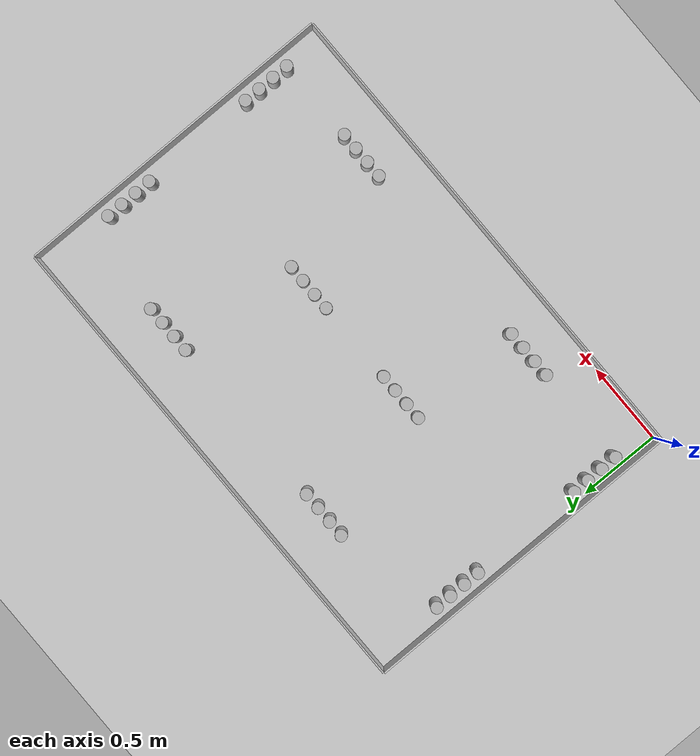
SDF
<sdf version="1.6">
  <world name="empty">
    <physics name="1ms" type="ignored">
      <max_step_size>0.001</max_step_size>
      <real_time_factor>1.0</real_time_factor>
    </physics>
    <plugin
      filename="gz-sim-physics-system"
      name="gz::sim::systems::Physics">
    </plugin>
    <plugin
      filename="gz-sim-user-commands-system"
      name="gz::sim::systems::UserCommands">
    </plugin>
    <plugin
      filename="gz-sim-scene-broadcaster-system"
      name="gz::sim::systems::SceneBroadcaster">
    </plugin>
    <plugin
      filename="gz-sim-sensors-system"
      name="gz::sim::systems::Sensors">
      <render_engine>ogre2</render_engine>
    </plugin>
    <plugin
      filename="gz-sim-contact-system"
      name="gz::sim::systems::Contact">
    </plugin>

    <light type="directional" name="sun">
      <cast_shadows>true</cast_shadows>
      <pose>0 0 10 0 0 0</pose>
      <diffuse>0.8 0.8 0.8 1</diffuse>
      <specular>0.2 0.2 0.2 1</specular>
      <attenuation>
        <range>1000</range>
        <constant>0.9</constant>
        <linear>0.01</linear>
        <quadratic>0.001</quadratic>
      </attenuation>
      <direction>-0.5 0.1 -0.9</direction>
    </light>

    <model name="ground_plane">
        <pose>1.5 1 0 0 0 0</pose>
        <static>true</static>
        <link name="link">
        <collision name="collision">
          <geometry>
            <plane>
              <normal>0 0 1</normal>
              <size>3 2</size>
            </plane>
          </geometry>
        </collision>
        <visual name="visual">
          <geometry>
            <plane>
              <normal>0 0 1</normal>
              <size>3 2</size>
            </plane>
          </geometry>
          <material>
            <ambient>0.8 0.8 0.8 1</ambient>
            <diffuse>0.8 0.8 0.8 1</diffuse>
            <specular>0.8 0.8 0.8 1</specular>
          </material>
        </visual>
      </link>
    </model>

    <model name="gradinBR">
      <static>true</static>
      <pose>0 0 0.0545 0 0 0</pose>
      <link name="bean_can1">
        <pose relative_to='__model__'>0.075 0.25 0 1.5708 0 0</pose>
        <collision name="collision">
          <geometry>
            <cylinder>
                <radius>0.0365</radius>
                <length>0.109</length>
            </cylinder>
          </geometry>
        </collision>
        <visual name="visual">
          <geometry>
            <mesh>
              <uri>file:///home/josch/ROS2/src/robot_creation/src/gazebo/Bean_Can_Aruco/Joshka_cannette1.obj</uri>
              <scale>0.001 0.001 0.001</scale>
            </mesh>
          </geometry>
        </visual>
      </link>
      <link name="bean_can2">
        <pose relative_to='__model__'>0.075 0.35 0 1.5708 0 0</pose>
        <collision name="collision">
          <geometry>
            <cylinder>
                <radius>0.0365</radius>
                <length>0.109</length>
            </cylinder>
          </geometry>
        </collision>
        <visual name="visual">
          <geometry>
            <mesh>
              <uri>file:///home/josch/ROS2/src/robot_creation/src/gazebo/Bean_Can_Aruco/Joshka_cannette1.obj</uri>
              <scale>0.001 0.001 0.001</scale>
            </mesh>
          </geometry>
        </visual>
      </link>
      <link name="bean_can3">
        <pose relative_to='__model__'>0.075 0.45 0 1.5708 0 0</pose>
        <collision name="collision">
          <geometry>
            <cylinder>
                <radius>0.0365</radius>
                <length>0.109</length>
            </cylinder>
          </geometry>
        </collision>
        <visual name="visual">
          <geometry>
            <mesh>
              <uri>file:///home/josch/ROS2/src/robot_creation/src/gazebo/Bean_Can_Aruco/Joshka_cannette1.obj</uri>
              <scale>0.001 0.001 0.001</scale>
            </mesh>
          </geometry>
        </visual>
      </link>
      <link name="bean_can4">
        <pose relative_to='__model__'>0.075 0.55 0 1.5708 0 0</pose>
        <collision name="collision">
          <geometry>
            <cylinder>
                <radius>0.0365</radius>
                <length>0.109</length>
            </cylinder>
          </geometry>
        </collision>
        <visual name="visual">
          <geometry>
            <mesh>
              <uri>file:///home/josch/ROS2/src/robot_creation/src/gazebo/Bean_Can_Aruco/Joshka_cannette1.obj</uri>
              <scale>0.001 0.001 0.001</scale>
            </mesh>
          </geometry>
        </visual>
      </link>
    </model>
    <model name="gradinBL">
      <static>true</static>
      <pose>0 1 0.0545 0 0 0</pose>
      <link name="bean_can1">
        <pose relative_to='__model__'>0.075 0.25 0 1.5708 0 0</pose>
        <collision name="collision">
          <geometry>
            <cylinder>
                <radius>0.0365</radius>
                <length>0.109</length>
            </cylinder>
          </geometry>
        </collision>
        <visual name="visual">
          <geometry>
            <mesh>
              <uri>file:///home/josch/ROS2/src/robot_creation/src/gazebo/Bean_Can_Aruco/Joshka_cannette1.obj</uri>
              <scale>0.001 0.001 0.001</scale>
            </mesh>
          </geometry>
        </visual>
      </link>
      <link name="bean_can2">
        <pose relative_to='__model__'>0.075 0.35 0 1.5708 0 0</pose>
        <collision name="collision">
          <geometry>
            <cylinder>
                <radius>0.0365</radius>
                <length>0.109</length>
            </cylinder>
          </geometry>
        </collision>
        <visual name="visual">
          <geometry>
            <mesh>
              <uri>file:///home/josch/ROS2/src/robot_creation/src/gazebo/Bean_Can_Aruco/Joshka_cannette1.obj</uri>
              <scale>0.001 0.001 0.001</scale>
            </mesh>
          </geometry>
        </visual>
      </link>
      <link name="bean_can3">
        <pose relative_to='__model__'>0.075 0.45 0 1.5708 0 0</pose>
        <collision name="collision">
          <geometry>
            <cylinder>
                <radius>0.0365</radius>
                <length>0.109</length>
            </cylinder>
          </geometry>
        </collision>
        <visual name="visual">
          <geometry>
            <mesh>
              <uri>file:///home/josch/ROS2/src/robot_creation/src/gazebo/Bean_Can_Aruco/Joshka_cannette1.obj</uri>
              <scale>0.001 0.001 0.001</scale>
            </mesh>
          </geometry>
        </visual>
      </link>
      <link name="bean_can4">
        <pose relative_to='__model__'>0.075 0.55 0 1.5708 0 0</pose>
        <collision name="collision">
          <geometry>
            <cylinder>
                <radius>0.0365</radius>
                <length>0.109</length>
            </cylinder>
          </geometry>
        </collision>
        <visual name="visual">
          <geometry>
            <mesh>
              <uri>file:///home/josch/ROS2/src/robot_creation/src/gazebo/Bean_Can_Aruco/Joshka_cannette1.obj</uri>
              <scale>0.001 0.001 0.001</scale>
            </mesh>
          </geometry>
        </visual>
      </link>
    </model>
    <model name="gradinTR">
      <static>true</static>
      <pose>2.85 0 0.0545 0 0 0</pose>
      <link name="bean_can1">
        <pose relative_to='__model__'>0.075 0.25 0 1.5708 0 0</pose>
        <collision name="collision">
          <geometry>
            <cylinder>
                <radius>0.0365</radius>
                <length>0.109</length>
            </cylinder>
          </geometry>
        </collision>
        <visual name="visual">
          <geometry>
            <mesh>
              <uri>file:///home/josch/ROS2/src/robot_creation/src/gazebo/Bean_Can_Aruco/Joshka_cannette1.obj</uri>
              <scale>0.001 0.001 0.001</scale>
            </mesh>
          </geometry>
        </visual>
      </link>
      <link name="bean_can2">
        <pose relative_to='__model__'>0.075 0.35 0 1.5708 0 0</pose>
        <collision name="collision">
          <geometry>
            <cylinder>
                <radius>0.0365</radius>
                <length>0.109</length>
            </cylinder>
          </geometry>
        </collision>
        <visual name="visual">
          <geometry>
            <mesh>
              <uri>file:///home/josch/ROS2/src/robot_creation/src/gazebo/Bean_Can_Aruco/Joshka_cannette1.obj</uri>
              <scale>0.001 0.001 0.001</scale>
            </mesh>
          </geometry>
        </visual>
      </link>
      <link name="bean_can3">
        <pose relative_to='__model__'>0.075 0.45 0 1.5708 0 0</pose>
        <collision name="collision">
          <geometry>
            <cylinder>
                <radius>0.0365</radius>
                <length>0.109</length>
            </cylinder>
          </geometry>
        </collision>
        <visual name="visual">
          <geometry>
            <mesh>
              <uri>file:///home/josch/ROS2/src/robot_creation/src/gazebo/Bean_Can_Aruco/Joshka_cannette1.obj</uri>
              <scale>0.001 0.001 0.001</scale>
            </mesh>
          </geometry>
        </visual>
      </link>
      <link name="bean_can4">
        <pose relative_to='__model__'>0.075 0.55 0 1.5708 0 0</pose>
        <collision name="collision">
          <geometry>
            <cylinder>
                <radius>0.0365</radius>
                <length>0.109</length>
            </cylinder>
          </geometry>
        </collision>
        <visual name="visual">
          <geometry>
            <mesh>
              <uri>file:///home/josch/ROS2/src/robot_creation/src/gazebo/Bean_Can_Aruco/Joshka_cannette1.obj</uri>
              <scale>0.001 0.001 0.001</scale>
            </mesh>
          </geometry>
        </visual>
      </link>
    </model>
    <model name="gradinTL">
      <static>true</static>
      <pose>2.85 1 0.0545 0 0 0</pose>
      <link name="bean_can1">
        <pose relative_to='__model__'>0.075 0.25 0 1.5708 0 0</pose>
        <collision name="collision">
          <geometry>
            <cylinder>
                <radius>0.0365</radius>
                <length>0.109</length>
            </cylinder>
          </geometry>
        </collision>
        <visual name="visual">
          <geometry>
            <mesh>
              <uri>file:///home/josch/ROS2/src/robot_creation/src/gazebo/Bean_Can_Aruco/Joshka_cannette1.obj</uri>
              <scale>0.001 0.001 0.001</scale>
            </mesh>
          </geometry>
        </visual>
      </link>
      <link name="bean_can2">
        <pose relative_to='__model__'>0.075 0.35 0 1.5708 0 0</pose>
        <collision name="collision">
          <geometry>
            <cylinder>
                <radius>0.0365</radius>
                <length>0.109</length>
            </cylinder>
          </geometry>
        </collision>
        <visual name="visual">
          <geometry>
            <mesh>
              <uri>file:///home/josch/ROS2/src/robot_creation/src/gazebo/Bean_Can_Aruco/Joshka_cannette1.obj</uri>
              <scale>0.001 0.001 0.001</scale>
            </mesh>
          </geometry>
        </visual>
      </link>
      <link name="bean_can3">
        <pose relative_to='__model__'>0.075 0.45 0 1.5708 0 0</pose>
        <collision name="collision">
          <geometry>
            <cylinder>
                <radius>0.0365</radius>
                <length>0.109</length>
            </cylinder>
          </geometry>
        </collision>
        <visual name="visual">
          <geometry>
            <mesh>
              <uri>file:///home/josch/ROS2/src/robot_creation/src/gazebo/Bean_Can_Aruco/Joshka_cannette1.obj</uri>
              <scale>0.001 0.001 0.001</scale>
            </mesh>
          </geometry>
        </visual>
      </link>
      <link name="bean_can4">
        <pose relative_to='__model__'>0.075 0.55 0 1.5708 0 0</pose>
        <collision name="collision">
          <geometry>
            <cylinder>
                <radius>0.0365</radius>
                <length>0.109</length>
            </cylinder>
          </geometry>
        </collision>
        <visual name="visual">
          <geometry>
            <mesh>
              <uri>file:///home/josch/ROS2/src/robot_creation/src/gazebo/Bean_Can_Aruco/Joshka_cannette1.obj</uri>
              <scale>0.001 0.001 0.001</scale>
            </mesh>
          </geometry>
        </visual>
      </link>
    </model>
    <model name="gradinBCL">
      <static>true</static>
      <pose>0.475 1.7755 0.0545 0 0 -1.5708</pose>
      <link name="bean_can1">
        <pose relative_to='__model__'>0.075 0.25 0 1.5708 0 0</pose>
        <collision name="collision">
          <geometry>
            <cylinder>
                <radius>0.0365</radius>
                <length>0.109</length>
            </cylinder>
          </geometry>
        </collision>
        <visual name="visual">
          <geometry>
            <mesh>
              <uri>file:///home/josch/ROS2/src/robot_creation/src/gazebo/Bean_Can_Aruco/Joshka_cannette1.obj</uri>
              <scale>0.001 0.001 0.001</scale>
            </mesh>
          </geometry>
        </visual>
      </link>
      <link name="bean_can2">
        <pose relative_to='__model__'>0.075 0.35 0 1.5708 0 0</pose>
        <collision name="collision">
          <geometry>
            <cylinder>
                <radius>0.0365</radius>
                <length>0.109</length>
            </cylinder>
          </geometry>
        </collision>
        <visual name="visual">
          <geometry>
            <mesh>
              <uri>file:///home/josch/ROS2/src/robot_creation/src/gazebo/Bean_Can_Aruco/Joshka_cannette1.obj</uri>
              <scale>0.001 0.001 0.001</scale>
            </mesh>
          </geometry>
        </visual>
      </link>
      <link name="bean_can3">
        <pose relative_to='__model__'>0.075 0.45 0 1.5708 0 0</pose>
        <collision name="collision">
          <geometry>
            <cylinder>
                <radius>0.0365</radius>
                <length>0.109</length>
            </cylinder>
          </geometry>
        </collision>
        <visual name="visual">
          <geometry>
            <mesh>
              <uri>file:///home/josch/ROS2/src/robot_creation/src/gazebo/Bean_Can_Aruco/Joshka_cannette1.obj</uri>
              <scale>0.001 0.001 0.001</scale>
            </mesh>
          </geometry>
        </visual>
      </link>
      <link name="bean_can4">
        <pose relative_to='__model__'>0.075 0.55 0 1.5708 0 0</pose>
        <collision name="collision">
          <geometry>
            <cylinder>
                <radius>0.0365</radius>
                <length>0.109</length>
            </cylinder>
          </geometry>
        </collision>
        <visual name="visual">
          <geometry>
            <mesh>
              <uri>file:///home/josch/ROS2/src/robot_creation/src/gazebo/Bean_Can_Aruco/Joshka_cannette1.obj</uri>
              <scale>0.001 0.001 0.001</scale>
            </mesh>
          </geometry>
        </visual>
      </link>
    </model>
    <model name="gradinBCR">
      <static>true</static>
      <pose>0.425 0.325 0.0545 0 0 -1.5708</pose>
      <link name="bean_can1">
        <pose relative_to='__model__'>0.075 0.25 0 1.5708 0 0</pose>
        <collision name="collision">
          <geometry>
            <cylinder>
                <radius>0.0365</radius>
                <length>0.109</length>
            </cylinder>
          </geometry>
        </collision>
        <visual name="visual">
          <geometry>
            <mesh>
              <uri>file:///home/josch/ROS2/src/robot_creation/src/gazebo/Bean_Can_Aruco/Joshka_cannette1.obj</uri>
              <scale>0.001 0.001 0.001</scale>
            </mesh>
          </geometry>
        </visual>
      </link>
      <link name="bean_can2">
        <pose relative_to='__model__'>0.075 0.35 0 1.5708 0 0</pose>
        <collision name="collision">
          <geometry>
            <cylinder>
                <radius>0.0365</radius>
                <length>0.109</length>
            </cylinder>
          </geometry>
        </collision>
        <visual name="visual">
          <geometry>
            <mesh>
              <uri>file:///home/josch/ROS2/src/robot_creation/src/gazebo/Bean_Can_Aruco/Joshka_cannette1.obj</uri>
              <scale>0.001 0.001 0.001</scale>
            </mesh>
          </geometry>
        </visual>
      </link>
      <link name="bean_can3">
        <pose relative_to='__model__'>0.075 0.45 0 1.5708 0 0</pose>
        <collision name="collision">
          <geometry>
            <cylinder>
                <radius>0.0365</radius>
                <length>0.109</length>
            </cylinder>
          </geometry>
        </collision>
        <visual name="visual">
          <geometry>
            <mesh>
              <uri>file:///home/josch/ROS2/src/robot_creation/src/gazebo/Bean_Can_Aruco/Joshka_cannette1.obj</uri>
              <scale>0.001 0.001 0.001</scale>
            </mesh>
          </geometry>
        </visual>
      </link>
      <link name="bean_can4">
        <pose relative_to='__model__'>0.075 0.55 0 1.5708 0 0</pose>
        <collision name="collision">
          <geometry>
            <cylinder>
                <radius>0.0365</radius>
                <length>0.109</length>
            </cylinder>
          </geometry>
        </collision>
        <visual name="visual">
          <geometry>
            <mesh>
              <uri>file:///home/josch/ROS2/src/robot_creation/src/gazebo/Bean_Can_Aruco/Joshka_cannette1.obj</uri>
              <scale>0.001 0.001 0.001</scale>
            </mesh>
          </geometry>
        </visual>
      </link>
    </model>
    <model name="gradinBCC">
      <static>true</static>
      <pose>0.700 1.025 0.0545 0 0 -1.5708</pose>
      <link name="bean_can1">
        <pose relative_to='__model__'>0.075 0.25 0 1.5708 0 0</pose>
        <collision name="collision">
          <geometry>
            <cylinder>
                <radius>0.0365</radius>
                <length>0.109</length>
            </cylinder>
          </geometry>
        </collision>
        <visual name="visual">
          <geometry>
            <mesh>
              <uri>file:///home/josch/ROS2/src/robot_creation/src/gazebo/Bean_Can_Aruco/Joshka_cannette1.obj</uri>
              <scale>0.001 0.001 0.001</scale>
            </mesh>
          </geometry>
        </visual>
      </link>
      <link name="bean_can2">
        <pose relative_to='__model__'>0.075 0.35 0 1.5708 0 0</pose>
        <collision name="collision">
          <geometry>
            <cylinder>
                <radius>0.0365</radius>
                <length>0.109</length>
            </cylinder>
          </geometry>
        </collision>
        <visual name="visual">
          <geometry>
            <mesh>
              <uri>file:///home/josch/ROS2/src/robot_creation/src/gazebo/Bean_Can_Aruco/Joshka_cannette1.obj</uri>
              <scale>0.001 0.001 0.001</scale>
            </mesh>
          </geometry>
        </visual>
      </link>
      <link name="bean_can3">
        <pose relative_to='__model__'>0.075 0.45 0 1.5708 0 0</pose>
        <collision name="collision">
          <geometry>
            <cylinder>
                <radius>0.0365</radius>
                <length>0.109</length>
            </cylinder>
          </geometry>
        </collision>
        <visual name="visual">
          <geometry>
            <mesh>
              <uri>file:///home/josch/ROS2/src/robot_creation/src/gazebo/Bean_Can_Aruco/Joshka_cannette1.obj</uri>
              <scale>0.001 0.001 0.001</scale>
            </mesh>
          </geometry>
        </visual>
      </link>
      <link name="bean_can4">
        <pose relative_to='__model__'>0.075 0.55 0 1.5708 0 0</pose>
        <collision name="collision">
          <geometry>
            <cylinder>
                <radius>0.0365</radius>
                <length>0.109</length>
            </cylinder>
          </geometry>
        </collision>
        <visual name="visual">
          <geometry>
            <mesh>
              <uri>file:///home/josch/ROS2/src/robot_creation/src/gazebo/Bean_Can_Aruco/Joshka_cannette1.obj</uri>
              <scale>0.001 0.001 0.001</scale>
            </mesh>
          </geometry>
        </visual>
      </link>
    </model>
      <model name="gradinTCL">
      <static>true</static>
      <pose>1.825 1.7755 0.0545 0 0 -1.5708</pose>
      <link name="bean_can1">
        <pose relative_to='__model__'>0.075 0.25 0 1.5708 0 0</pose>
        <collision name="collision">
          <geometry>
            <cylinder>
                <radius>0.0365</radius>
                <length>0.109</length>
            </cylinder>
          </geometry>
        </collision>
        <visual name="visual">
          <geometry>
            <mesh>
              <uri>file:///home/josch/ROS2/src/robot_creation/src/gazebo/Bean_Can_Aruco/Joshka_cannette1.obj</uri>
              <scale>0.001 0.001 0.001</scale>
            </mesh>
          </geometry>
        </visual>
      </link>
      <link name="bean_can2">
        <pose relative_to='__model__'>0.075 0.35 0 1.5708 0 0</pose>
        <collision name="collision">
          <geometry>
            <cylinder>
                <radius>0.0365</radius>
                <length>0.109</length>
            </cylinder>
          </geometry>
        </collision>
        <visual name="visual">
          <geometry>
            <mesh>
              <uri>file:///home/josch/ROS2/src/robot_creation/src/gazebo/Bean_Can_Aruco/Joshka_cannette1.obj</uri>
              <scale>0.001 0.001 0.001</scale>
            </mesh>
          </geometry>
        </visual>
      </link>
      <link name="bean_can3">
        <pose relative_to='__model__'>0.075 0.45 0 1.5708 0 0</pose>
        <collision name="collision">
          <geometry>
            <cylinder>
                <radius>0.0365</radius>
                <length>0.109</length>
            </cylinder>
          </geometry>
        </collision>
        <visual name="visual">
          <geometry>
            <mesh>
              <uri>file:///home/josch/ROS2/src/robot_creation/src/gazebo/Bean_Can_Aruco/Joshka_cannette1.obj</uri>
              <scale>0.001 0.001 0.001</scale>
            </mesh>
          </geometry>
        </visual>
      </link>
      <link name="bean_can4">
        <pose relative_to='__model__'>0.075 0.55 0 1.5708 0 0</pose>
        <collision name="collision">
          <geometry>
            <cylinder>
                <radius>0.0365</radius>
                <length>0.109</length>
            </cylinder>
          </geometry>
        </collision>
        <visual name="visual">
          <geometry>
            <mesh>
              <uri>file:///home/josch/ROS2/src/robot_creation/src/gazebo/Bean_Can_Aruco/Joshka_cannette1.obj</uri>
              <scale>0.001 0.001 0.001</scale>
            </mesh>
          </geometry>
        </visual>
      </link>
    </model>
    <model name="gradinTCR">
      <static>true</static>
      <pose>1.875 0.325 0.0545 0 0 -1.5708</pose>
      <link name="bean_can1">
        <pose relative_to='__model__'>0.075 0.25 0 1.5708 0 0</pose>
        <collision name="collision">
          <geometry>
            <cylinder>
                <radius>0.0365</radius>
                <length>0.109</length>
            </cylinder>
          </geometry>
        </collision>
        <visual name="visual">
          <geometry>
            <mesh>
              <uri>file:///home/josch/ROS2/src/robot_creation/src/gazebo/Bean_Can_Aruco/Joshka_cannette1.obj</uri>
              <scale>0.001 0.001 0.001</scale>
            </mesh>
          </geometry>
        </visual>
      </link>
      <link name="bean_can2">
        <pose relative_to='__model__'>0.075 0.35 0 1.5708 0 0</pose>
        <collision name="collision">
          <geometry>
            <cylinder>
                <radius>0.0365</radius>
                <length>0.109</length>
            </cylinder>
          </geometry>
        </collision>
        <visual name="visual">
          <geometry>
            <mesh>
              <uri>file:///home/josch/ROS2/src/robot_creation/src/gazebo/Bean_Can_Aruco/Joshka_cannette1.obj</uri>
              <scale>0.001 0.001 0.001</scale>
            </mesh>
          </geometry>
        </visual>
      </link>
      <link name="bean_can3">
        <pose relative_to='__model__'>0.075 0.45 0 1.5708 0 0</pose>
        <collision name="collision">
          <geometry>
            <cylinder>
                <radius>0.0365</radius>
                <length>0.109</length>
            </cylinder>
          </geometry>
        </collision>
        <visual name="visual">
          <geometry>
            <mesh>
              <uri>file:///home/josch/ROS2/src/robot_creation/src/gazebo/Bean_Can_Aruco/Joshka_cannette1.obj</uri>
              <scale>0.001 0.001 0.001</scale>
            </mesh>
          </geometry>
        </visual>
      </link>
      <link name="bean_can4">
        <pose relative_to='__model__'>0.075 0.55 0 1.5708 0 0</pose>
        <collision name="collision">
          <geometry>
            <cylinder>
                <radius>0.0365</radius>
                <length>0.109</length>
            </cylinder>
          </geometry>
        </collision>
        <visual name="visual">
          <geometry>
            <mesh>
              <uri>file:///home/josch/ROS2/src/robot_creation/src/gazebo/Bean_Can_Aruco/Joshka_cannette1.obj</uri>
              <scale>0.001 0.001 0.001</scale>
            </mesh>
          </geometry>
        </visual>
      </link>
    </model>
    <model name="gradinTCC">
      <static>true</static>
      <pose>1.500 1.025 0.0545 0 0 -1.5708</pose>
      <link name="bean_can1">
        <pose relative_to='__model__'>0.075 0.25 0 1.5708 0 0</pose>
        <collision name="collision">
          <geometry>
            <cylinder>
                <radius>0.0365</radius>
                <length>0.109</length>
            </cylinder>
          </geometry>
        </collision>
        <visual name="visual">
          <geometry>
            <mesh>
              <uri>file:///home/josch/ROS2/src/robot_creation/src/gazebo/Bean_Can_Aruco/Joshka_cannette1.obj</uri>
              <scale>0.001 0.001 0.001</scale>
            </mesh>
          </geometry>
        </visual>
      </link>
      <link name="bean_can2">
        <pose relative_to='__model__'>0.075 0.35 0 1.5708 0 0</pose>
        <collision name="collision">
          <geometry>
            <cylinder>
                <radius>0.0365</radius>
                <length>0.109</length>
            </cylinder>
          </geometry>
        </collision>
        <visual name="visual">
          <geometry>
            <mesh>
              <uri>file:///home/josch/ROS2/src/robot_creation/src/gazebo/Bean_Can_Aruco/Joshka_cannette1.obj</uri>
              <scale>0.001 0.001 0.001</scale>
            </mesh>
          </geometry>
        </visual>
      </link>
      <link name="bean_can3">
        <pose relative_to='__model__'>0.075 0.45 0 1.5708 0 0</pose>
        <collision name="collision">
          <geometry>
            <cylinder>
                <radius>0.0365</radius>
                <length>0.109</length>
            </cylinder>
          </geometry>
        </collision>
        <visual name="visual">
          <geometry>
            <mesh>
              <uri>file:///home/josch/ROS2/src/robot_creation/src/gazebo/Bean_Can_Aruco/Joshka_cannette1.obj</uri>
              <scale>0.001 0.001 0.001</scale>
            </mesh>
          </geometry>
        </visual>
      </link>
      <link name="bean_can4">
        <pose relative_to='__model__'>0.075 0.55 0 1.5708 0 0</pose>
        <collision name="collision">
          <geometry>
            <cylinder>
                <radius>0.0365</radius>
                <length>0.109</length>
            </cylinder>
          </geometry>
        </collision>
        <visual name="visual">
          <geometry>
            <mesh>
              <uri>file:///home/josch/ROS2/src/robot_creation/src/gazebo/Bean_Can_Aruco/Joshka_cannette1.obj</uri>
              <scale>0.001 0.001 0.001</scale>
            </mesh>
          </geometry>
        </visual>
      </link>
    </model>

    <model name="walls">
      <static>true</static>
      <pose>0 0 0.1 0 0 0</pose>
      <link name="left">
        <pose relative_to='__model__'>1.5 -0.005 0 0 0 0</pose>
        <collision name="collision">
          <geometry>
            <box>
                <size>3.0 0.01 0.1</size>
            </box>
          </geometry>
        </collision>
        <visual name="visual">
          <geometry>
            <box>
                <size>3.0 0.01 0.1</size>
            </box>
          </geometry>
          <material>
            <ambient>0.8 0.8 0.8 1</ambient>
            <diffuse>0.8 0.8 0.8 1</diffuse>
            <specular>0.8 0.8 0.8 1</specular>
          </material>
        </visual>
      </link>
      <link name="right">
        <pose relative_to='__model__'>1.5 2.005 0 0 0 0</pose>
        <collision name="collision">
          <geometry>
            <box>
                <size>3.0 0.01 0.1</size>
            </box>
          </geometry>
        </collision>
        <visual name="visual">
          <geometry>
            <box>
                <size>3.0 0.01 0.1</size>
            </box>
          </geometry>
          <material>
            <ambient>0.8 0.8 0.8 1</ambient>
            <diffuse>0.8 0.8 0.8 1</diffuse>
            <specular>0.8 0.8 0.8 1</specular>
          </material>
        </visual>
      </link>
      <link name="down">
        <pose relative_to='__model__'>-0.005 1 0 0 0 1.5708</pose>
        <collision name="collision">
          <geometry>
            <box>
                <size>2.0 0.01 0.1</size>
            </box>
          </geometry>
        </collision>
        <visual name="visual">
          <geometry>
            <box>
                <size>2.0 0.01 0.1</size>
            </box>
          </geometry>
          <material>
            <ambient>0.8 0.8 0.8 1</ambient>
            <diffuse>0.8 0.8 0.8 1</diffuse>
            <specular>0.8 0.8 0.8 1</specular>
          </material>
        </visual>
      </link>
      <link name="up">
        <pose relative_to='__model__'>3.005 1 0 0 0 1.5708</pose>
        <collision name="collision">
          <geometry>
            <box>
                <size>2.0 0.01 0.1</size>
            </box>
          </geometry>
        </collision>
        <visual name="visual">
          <geometry>
            <box>
                <size>2.0 0.01 0.1</size>
            </box>
          </geometry>
          <material>
            <ambient>0.8 0.8 0.8 1</ambient>
            <diffuse>0.8 0.8 0.8 1</diffuse>
            <specular>0.8 0.8 0.8 1</specular>
          </material>
        </visual>
      </link>
    </model>
  </world>
</sdf>
